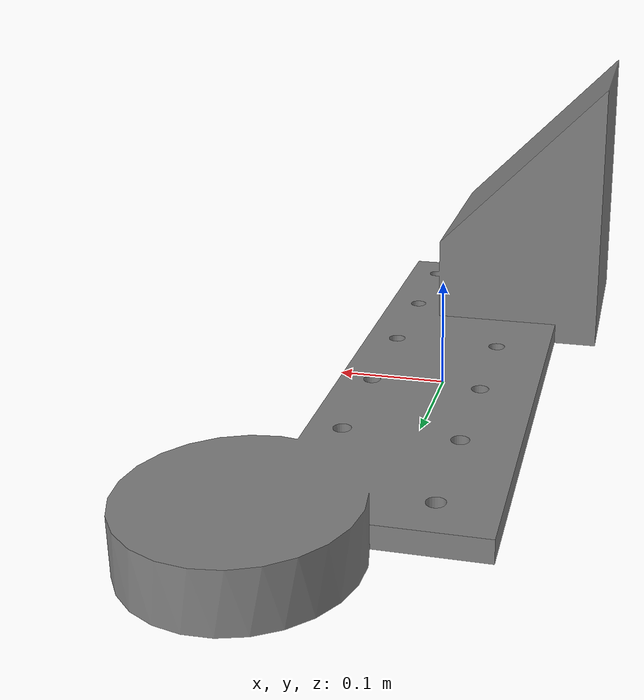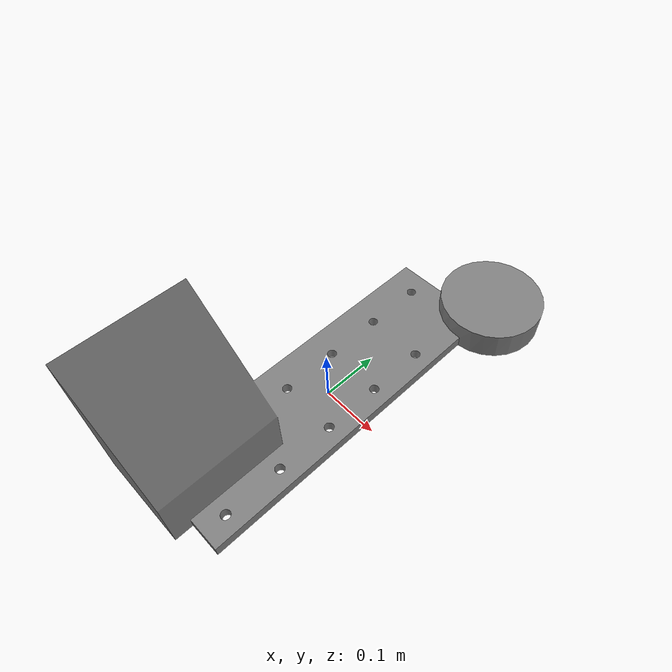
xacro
<?xml version="1.0"?>
<robot name="iliad" xmlns:xacro="http://wiki.ros.org/xacro">

<!-- arms_base-->

    <xacro:property name="arb_box_x" value="0.2"/>
    <xacro:property name="arb_box_y" value="0.57"/>
    <xacro:property name="arb_box_z" value="0.1"/>
    <xacro:property name="arb_box_dim" value="${arb_box_x} ${arb_box_y} ${arb_box_z}"/>
    <xacro:property name="arb_mass" value="2"/>

    <link name="arms_base">
        <visual>
            <geometry>
                <mesh filename="package://iliad/meshes/arm_base.stl"/>
            </geometry>
            <origin xyz="-0.135 0.410 0" rpy="0 0 -1.57079632679"/>
            <material name="grey">
                <color rgba="0.5 0.5 0.5 1"/>
            </material>
        </visual>
        <collision>
            <geometry>
                <mesh filename="package://iliad/meshes/arm_base.stl"/>
            </geometry>
            <origin xyz="-0.135 0.410 0" rpy="0 0 -1.57079632679"/>
        </collision>
        <inertial>
            <mass value="${arb_mass}"/>
            <inertia ixx="${arb_mass/12*(arb_box_y*arb_box_y+arb_box_z*arb_box_z)}" ixy="0.0" ixz="0.0" iyy="${arb_mass/12*(arb_box_x*arb_box_x+arb_box_z*arb_box_z)}" iyz="0.0" izz="${arb_mass/12*(arb_box_x*arb_box_x+arb_box_y*arb_box_y)}"/>
            <origin xyz="0 0 0.05" rpy="0 0 0"/>
        </inertial>
    </link>

    <gazebo reference="arms_base">
        <material>Gazebo/Grey</material>
    </gazebo>

</robot>
